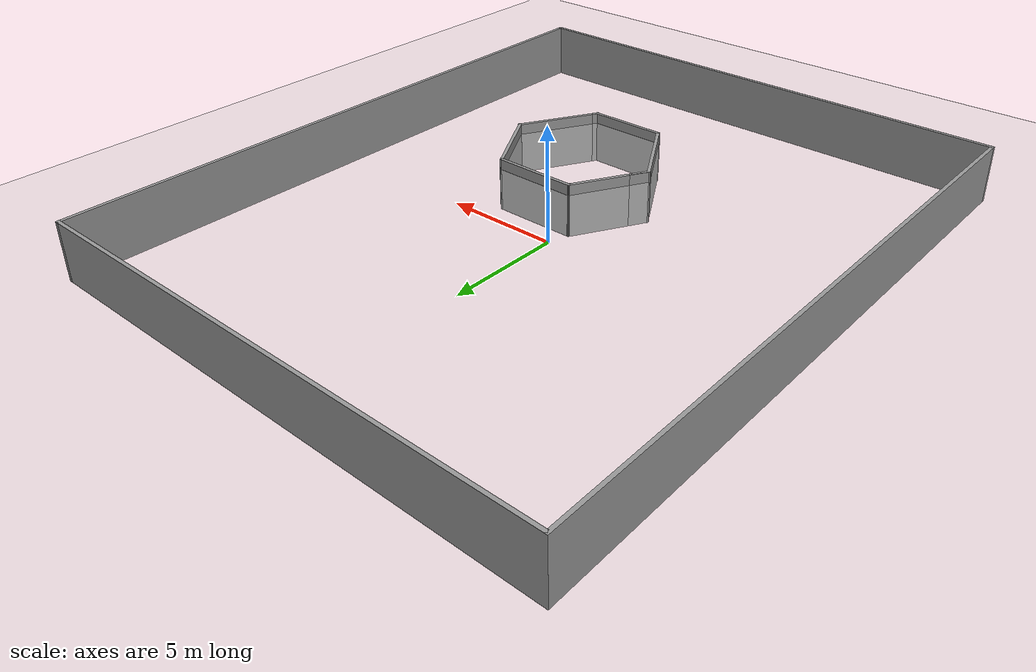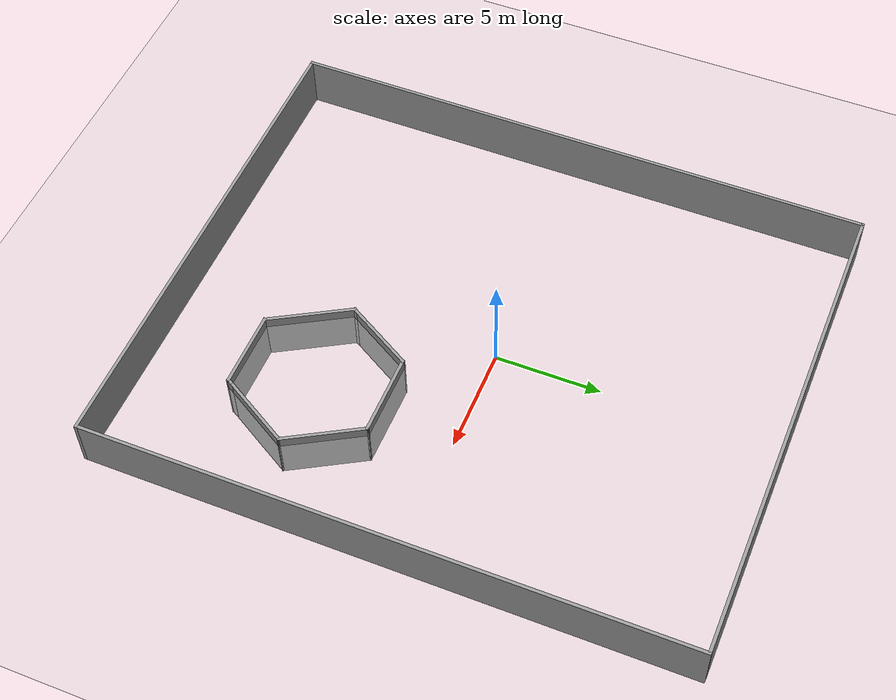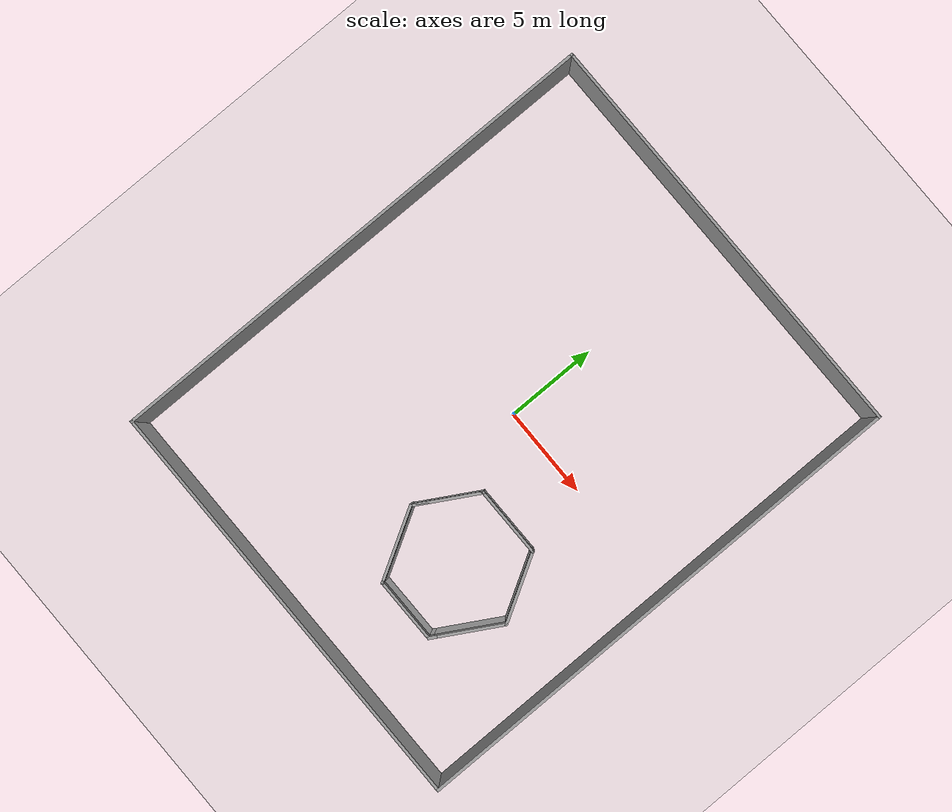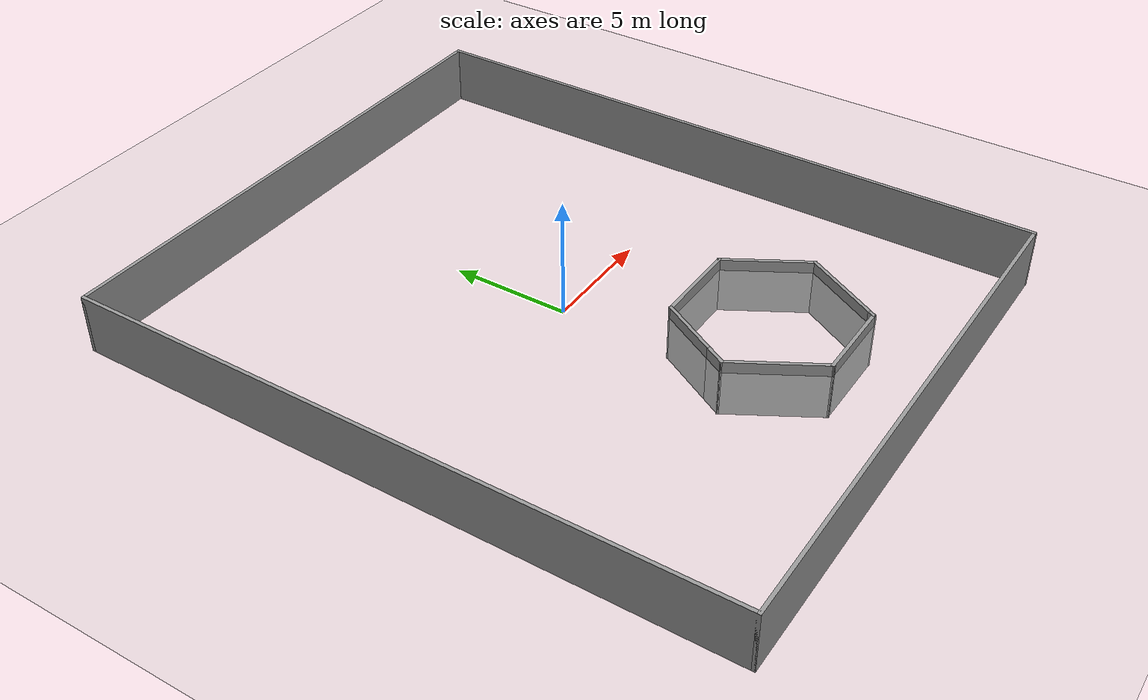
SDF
<sdf version="1.6">
 <world name="default">
  <light name="sun" type="directional">
   <pose>0 0 10 0 -0 0</pose>
   <diffuse>0.8 0.8 0.8 1</diffuse>
   <specular>0.2 0.2 0.2 1</specular>
   <attenuation>
    <range>1000</range>
    <constant>0.9</constant>
    <linear>0.01</linear>
    <quadratic>0.001</quadratic>
   </attenuation>
   <direction>-0.5 0.1 -0.9</direction>
  </light>
  <model name="ground_plane">
   <static>1</static>
   <link name="link">
    <collision name="collision">
     <geometry><plane><normal>0 0 1</normal><size>100 100</size></plane></geometry>
     <surface><friction><ode><mu>100</mu><mu2>50</mu2></ode></friction></surface>
    </collision>
    <visual name="visual">
     <cast_shadows>0</cast_shadows>
     <geometry><plane><normal>0 0 1</normal><size>100 100</size></plane></geometry>
     <material>
      <script><uri>file://media/materials/scripts/gazebo.material</uri><name>Gazebo/Grey</name></script>
     </material>
    </visual>
   </link>
  </model>
  <gravity>0 0 -9.8</gravity>
  <magnetic_field>6e-06 2.3e-05 -4.2e-05</magnetic_field>
  <atmosphere type="adiabatic"/>
  <physics name="default_physics" default="0" type="ode">
   <max_step_size>0.001</max_step_size>
   <real_time_factor>1</real_time_factor>
   <real_time_update_rate>1000</real_time_update_rate>
  </physics>
  <scene><ambient>0.4 0.4 0.4 1</ambient><background>0.7 0.7 0.7 1</background><shadows>1</shadows></scene>
  <audio><device>default</device></audio>
  <spherical_coordinates>
   <surface_model>EARTH_WGS84</surface_model>
   <latitude_deg>0</latitude_deg>
   <longitude_deg>0</longitude_deg>
   <elevation>0</elevation>
   <heading_deg>0</heading_deg>
  </spherical_coordinates>
  <model name="aaaaaaaa">
   <pose>-0.039704 -0.490105 0 0 0 -1.5716</pose>
   <link name="Wall_38">
    <collision name="Wall_38_Collision">
     <geometry><box><size>28 0.15 2.5</size></box></geometry>
     <pose>0 0 1.25 0 -0 0</pose>
    </collision>
    <visual name="Wall_38_Visual">
     <pose>0 0 1.25 0 -0 0</pose>
     <geometry><box><size>28 0.15 2.5</size></box></geometry>
     <material>
      <script><uri>file://media/materials/scripts/gazebo.material</uri><name>Gazebo/Grey</name></script>
      <ambient>1 1 1 1</ambient>
     </material>
     <meta><layer>0</layer></meta>
    </visual>
    <pose>0 -11.55 0 0 -0 0</pose>
   </link>
   <link name="Wall_39">
    <collision name="Wall_39_Collision">
     <geometry><box><size>23.25 0.15 2.5</size></box></geometry>
     <pose>0 0 1.25 0 -0 0</pose>
    </collision>
    <visual name="Wall_39_Visual">
     <pose>0 0 1.25 0 -0 0</pose>
     <geometry><box><size>23.25 0.15 2.5</size></box></geometry>
     <material>
      <script><uri>file://media/materials/scripts/gazebo.material</uri><name>Gazebo/Grey</name></script>
      <ambient>1 1 1 1</ambient>
     </material>
     <meta><layer>0</layer></meta>
    </visual>
    <pose>13.925 -0 0 0 -0 1.5708</pose>
   </link>
   <link name="Wall_40">
    <collision name="Wall_40_Collision">
     <geometry><box><size>28 0.15 2.5</size></box></geometry>
     <pose>0 0 1.25 0 -0 0</pose>
    </collision>
    <visual name="Wall_40_Visual">
     <pose>0 0 1.25 0 -0 0</pose>
     <geometry><box><size>28 0.15 2.5</size></box></geometry>
     <material>
      <script><uri>file://media/materials/scripts/gazebo.material</uri><name>Gazebo/Grey</name></script>
      <ambient>1 1 1 1</ambient>
     </material>
     <meta><layer>0</layer></meta>
    </visual>
    <pose>0 11.55 0 0 -0 3.14159</pose>
   </link>
   <link name="Wall_41">
    <collision name="Wall_41_Collision">
     <geometry><box><size>23.25 0.15 2.5</size></box></geometry>
     <pose>0 0 1.25 0 -0 0</pose>
    </collision>
    <visual name="Wall_41_Visual">
     <pose>0 0 1.25 0 -0 0</pose>
     <geometry><box><size>23.25 0.15 2.5</size></box></geometry>
     <material>
      <script><uri>file://media/materials/scripts/gazebo.material</uri><name>Gazebo/Grey</name></script>
      <ambient>1 1 1 1</ambient>
     </material>
     <meta><layer>0</layer></meta>
    </visual>
    <pose>-13.925 -0 0 0 -0 -1.5708</pose>
   </link>
   <static>1</static>
  </model>
  <model name="bbbbb">
   <pose>3.97394 -7.06081 -2.04418 0 -0 0</pose>
   <link name="Wall_1">
    <collision name="Wall_1_Collision">
     <geometry><box><size>3.5 0.15 2.5</size></box></geometry>
     <pose>0 0 1.25 0 -0 0</pose>
    </collision>
    <visual name="Wall_1_Visual">
     <pose>0 0 1.25 0 -0 0</pose>
     <geometry><box><size>3.5 0.15 2.5</size></box></geometry>
     <material>
      <script><uri>file://media/materials/scripts/gazebo.material</uri><name>Gazebo/Grey</name></script>
      <ambient>1 1 1 1</ambient>
     </material>
     <meta><layer>0</layer></meta>
    </visual>
    <pose>-2.8 1.92691 0 0 -0 1.0472</pose>
   </link>
   <link name="Wall_2">
    <collision name="Wall_2_Collision">
     <geometry><box><size>4 0.15 2.5</size></box></geometry>
     <pose>0 0 1.25 0 -0 0</pose>
    </collision>
    <visual name="Wall_2_Visual">
     <pose>0 0 1.25 0 -0 0</pose>
     <geometry><box><size>4 0.15 2.5</size></box></geometry>
     <material>
      <script><uri>file://media/materials/scripts/gazebo.material</uri><name>Gazebo/Grey</name></script>
      <ambient>1 1 1 1</ambient>
     </material>
     <meta><layer>0</layer></meta>
    </visual>
    <pose>-0.0375 3.3775 0 0 -0 0</pose>
   </link>
   <link name="Wall_3">
    <collision name="Wall_3_Collision">
     <geometry><box><size>4 0.15 2.5</size></box></geometry>
     <pose>0 0 1.25 0 -0 0</pose>
    </collision>
    <visual name="Wall_3_Visual">
     <pose>0 0 1.25 0 -0 0</pose>
     <geometry><box><size>4 0.15 2.5</size></box></geometry>
     <material>
      <script><uri>file://media/materials/scripts/gazebo.material</uri><name>Gazebo/Grey</name></script>
      <ambient>1 1 1 1</ambient>
     </material>
     <meta><layer>0</layer></meta>
    </visual>
    <pose>2.85 1.7104 0 0 -0 -1.0472</pose>
   </link>
   <link name="Wall_4">
    <collision name="Wall_4_Collision">
     <geometry><box><size>3.75 0.15 2.5</size></box></geometry>
     <pose>0 0 1.25 0 -0 0</pose>
    </collision>
    <visual name="Wall_4_Visual">
     <pose>0 0 1.25 0 -0 0</pose>
     <geometry><box><size>3.75 0.15 2.5</size></box></geometry>
     <material>
      <script><uri>file://media/materials/scripts/gazebo.material</uri><name>Gazebo/Grey</name></script>
      <ambient>1 1 1 1</ambient>
     </material>
     <meta><layer>0</layer></meta>
    </visual>
    <pose>2.9125 -1.51554 0 0 -0 -2.0944</pose>
   </link>
   <link name="Wall_5">
    <collision name="Wall_5_Collision">
     <geometry><box><size>0.5 0.15 2.5</size></box></geometry>
     <pose>0 0 1.25 0 -0 0</pose>
    </collision>
    <visual name="Wall_5_Visual">
     <pose>0 0 1.25 0 -0 0</pose>
     <geometry><box><size>0.5 0.15 2.5</size></box></geometry>
     <material>
      <script><uri>file://media/materials/scripts/gazebo.material</uri><name>Gazebo/Grey</name></script>
      <ambient>1 1 1 1</ambient>
     </material>
     <meta><layer>0</layer></meta>
    </visual>
    <pose>1.925 -3.22594 0 0 -0 -2.0944</pose>
   </link>
   <link name="Wall_6">
    <collision name="Wall_6_Collision">
     <geometry><box><size>3.75 0.15 2.5</size></box></geometry>
     <pose>0 0 1.25 0 -0 0</pose>
    </collision>
    <visual name="Wall_6_Visual">
     <pose>0 0 1.25 0 -0 0</pose>
     <geometry><box><size>3.75 0.15 2.5</size></box></geometry>
     <material>
      <script><uri>file://media/materials/scripts/gazebo.material</uri><name>Gazebo/Grey</name></script>
      <ambient>1 1 1 1</ambient>
     </material>
     <meta><layer>0</layer></meta>
    </visual>
    <pose>0.0375 -3.3775 0 0 -0 3.14159</pose>
   </link>
   <link name="Wall_7">
    <collision name="Wall_7_Collision">
     <geometry><box><size>4.25 0.15 2.5</size></box></geometry>
     <pose>0 0 1.25 0 -0 0</pose>
    </collision>
    <visual name="Wall_7_Visual">
     <pose>0 0 1.25 0 -0 0</pose>
     <geometry><box><size>4.25 0.15 2.5</size></box></geometry>
     <material>
      <script><uri>file://media/materials/scripts/gazebo.material</uri><name>Gazebo/Grey</name></script>
      <ambient>1 1 1 1</ambient>
     </material>
     <meta><layer>0</layer></meta>
    </visual>
    <pose>-2.7875 -1.60215 0 0 -0 2.0944</pose>
   </link>
   <link name="Wall_8">
    <collision name="Wall_8_Collision">
     <geometry><box><size>1 0.15 2.5</size></box></geometry>
     <pose>0 0 1.25 0 -0 0</pose>
    </collision>
    <visual name="Wall_8_Visual">
     <pose>0 0 1.25 0 -0 0</pose>
     <geometry><box><size>1 0.15 2.5</size></box></geometry>
     <material>
      <script><uri>file://media/materials/scripts/gazebo.material</uri><name>Gazebo/Grey</name></script>
      <ambient>1 1 1 1</ambient>
     </material>
     <meta><layer>0</layer></meta>
    </visual>
    <pose>-3.6 0.541266 0 0 -0 1.0472</pose>
   </link>
   <static>1</static>
  </model>
 </world>
</sdf>
